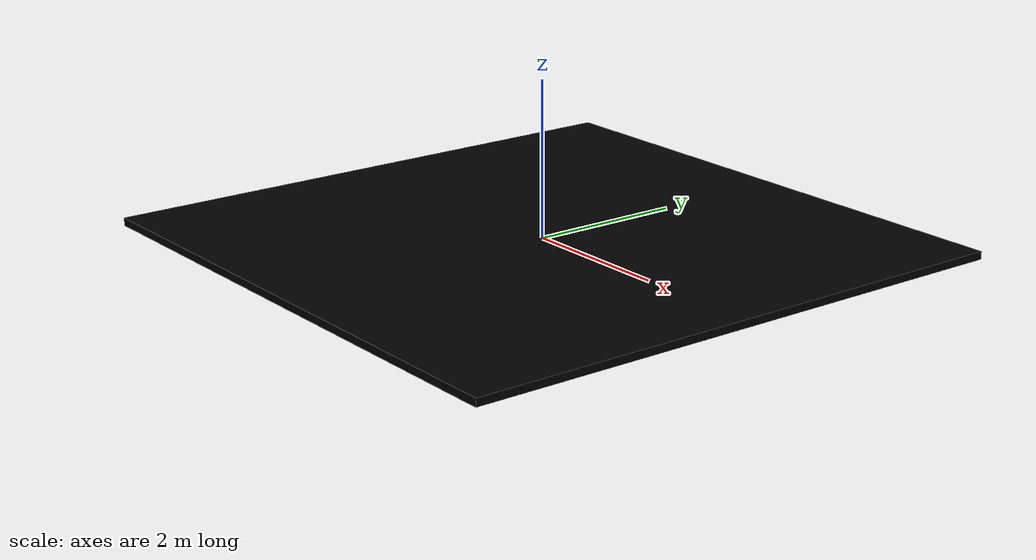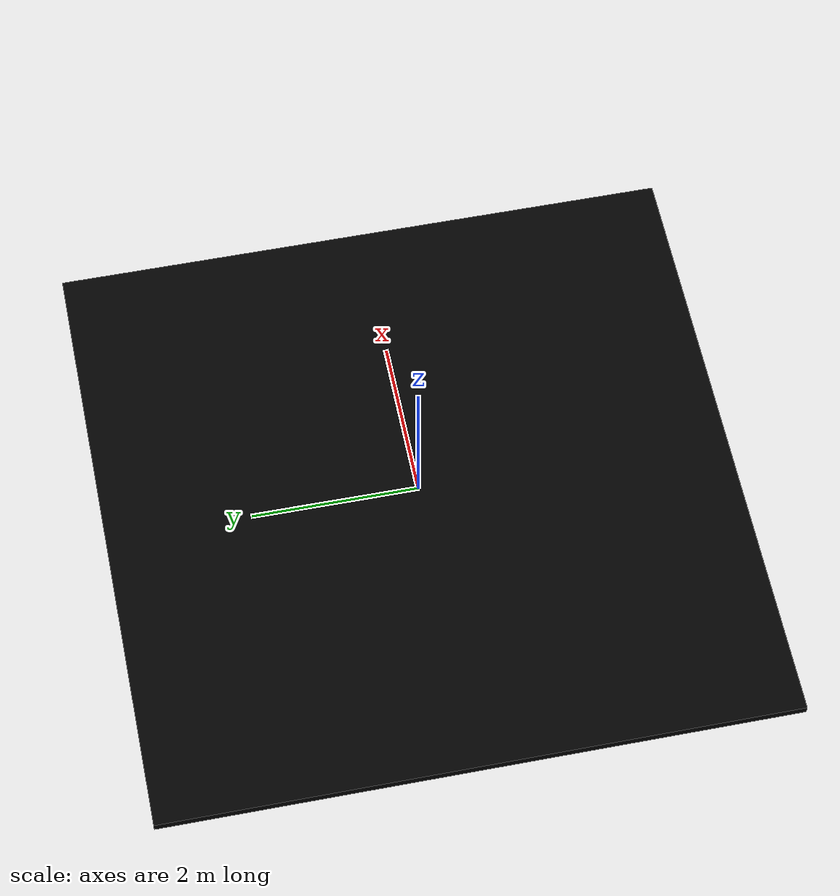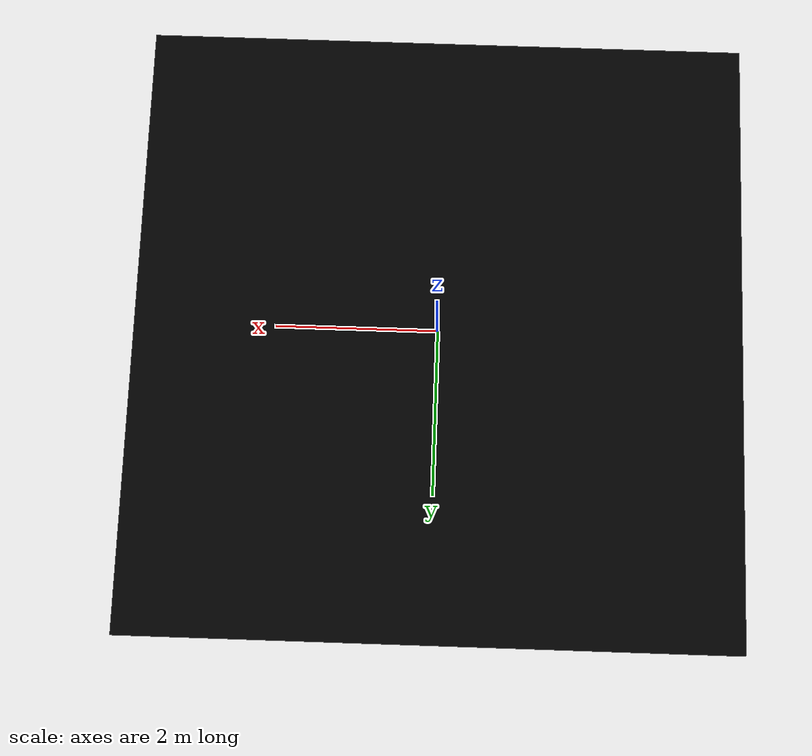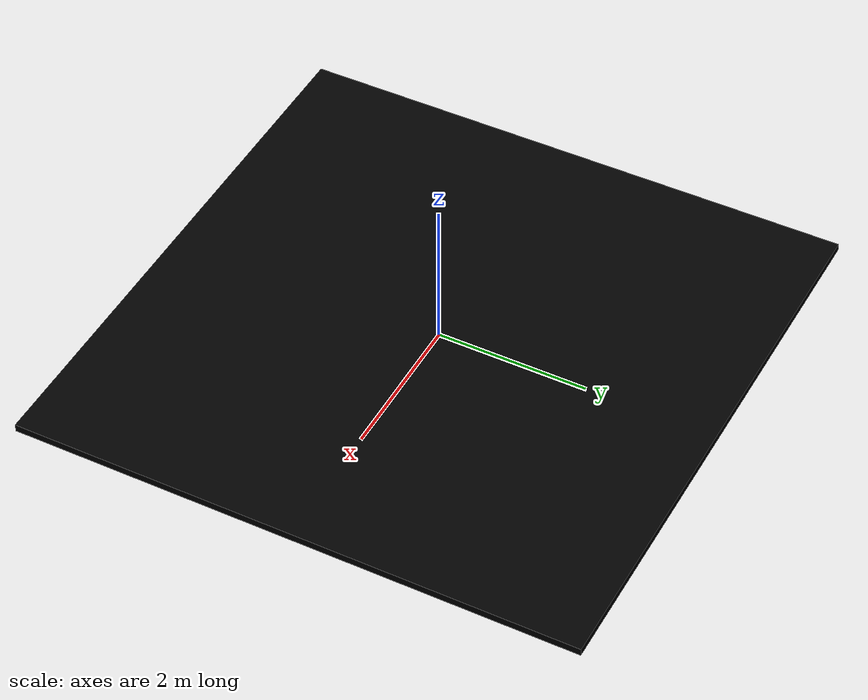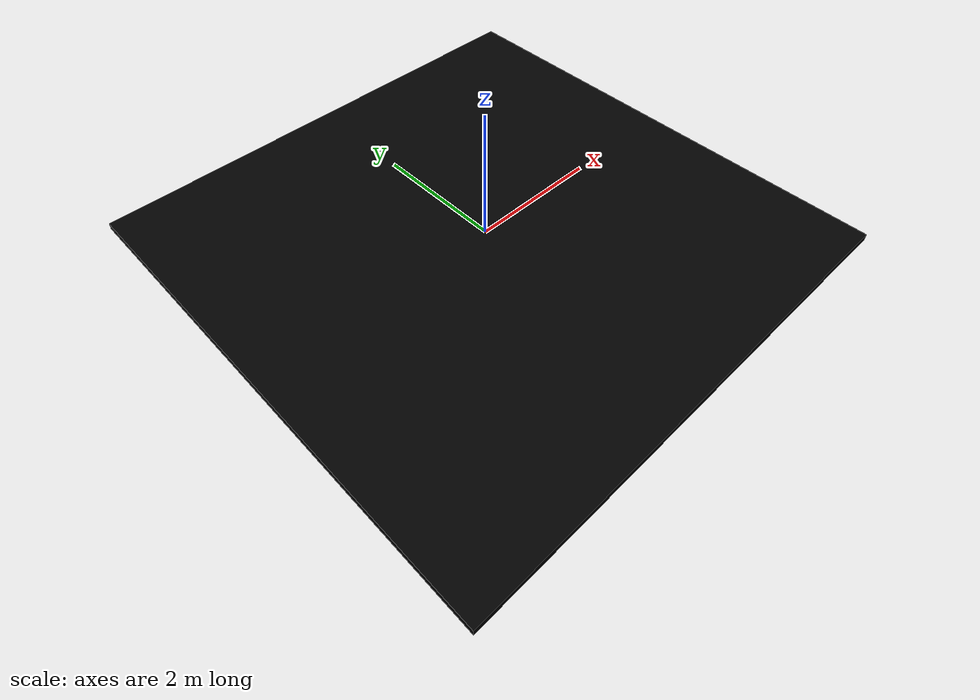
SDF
<?xml version="1.0"?>
<sdf version="1.4">
  <model name="ramp_groundplane">
    <static>true</static>
    <link name="link">
      <collision name="collision">
        <geometry>
          <box>
            <size>7.5 7.5 0.1</size>
          </box>
        </geometry>
        <surface>
          <friction>
            <ode>
              <mu>1</mu>
              <mu2>1</mu2>
            </ode>
          </friction>
        </surface>
      </collision>
      <visual name="visual_1">
        <pose>0 0 0 0 0 0</pose>
        <cast_shadows>false</cast_shadows>
        <geometry>
          <box>
            <size>7.5 7.5 0.1</size>
          </box>
        </geometry>
        <material>
          <ambient>229 237 239 1</ambient>
          <diffuse>0 0 0 1</diffuse>
          <specular>0 0 0 0</specular>
          <emissive>0 0 0 1</emissive>
        </material>
      </visual>
    </link>
  </model>
</sdf>
